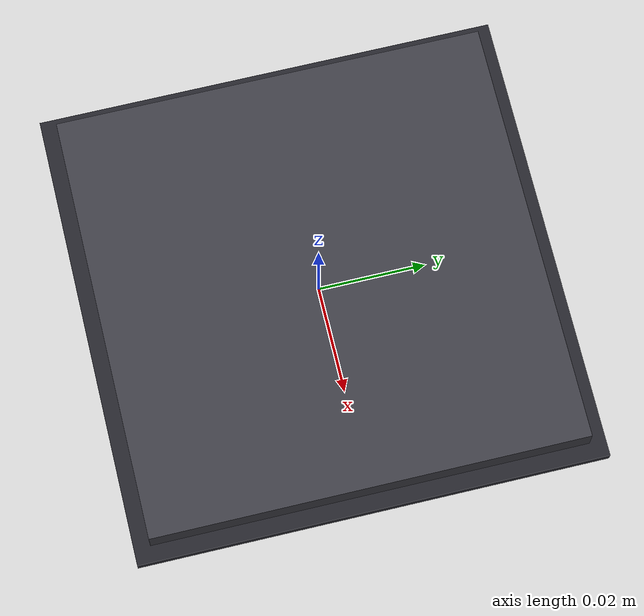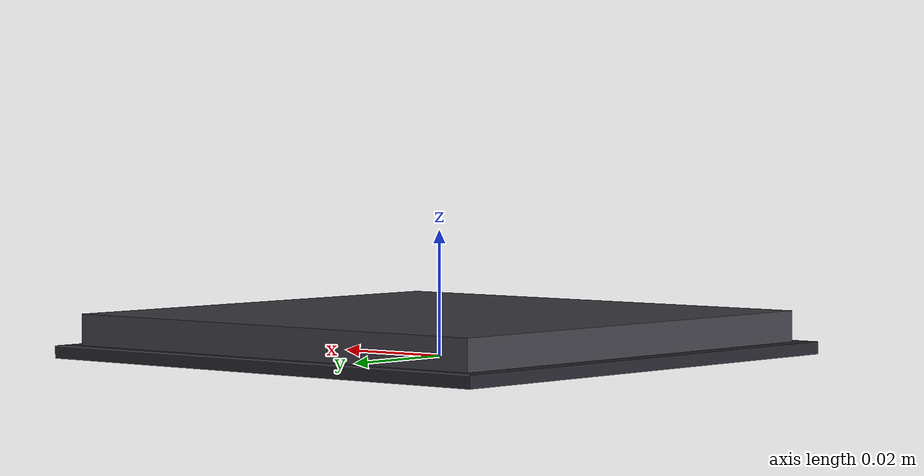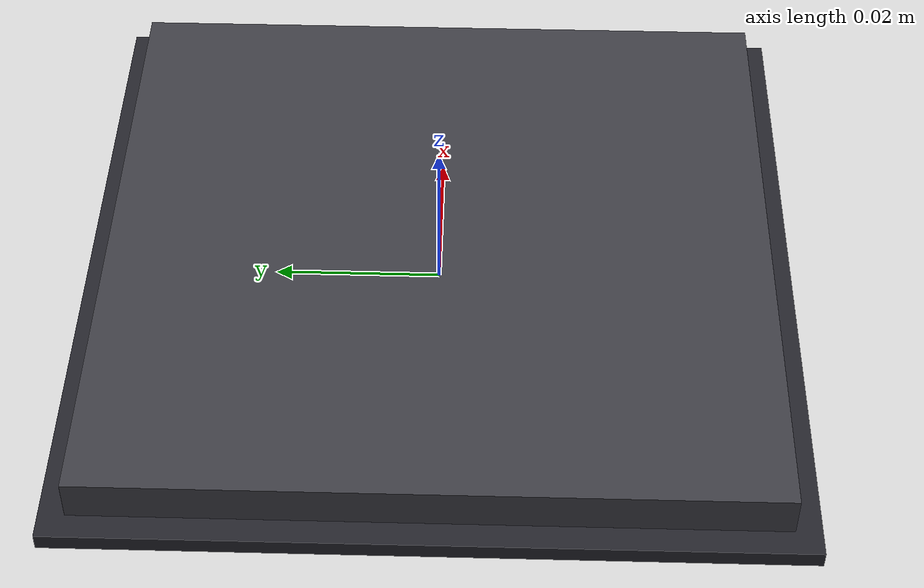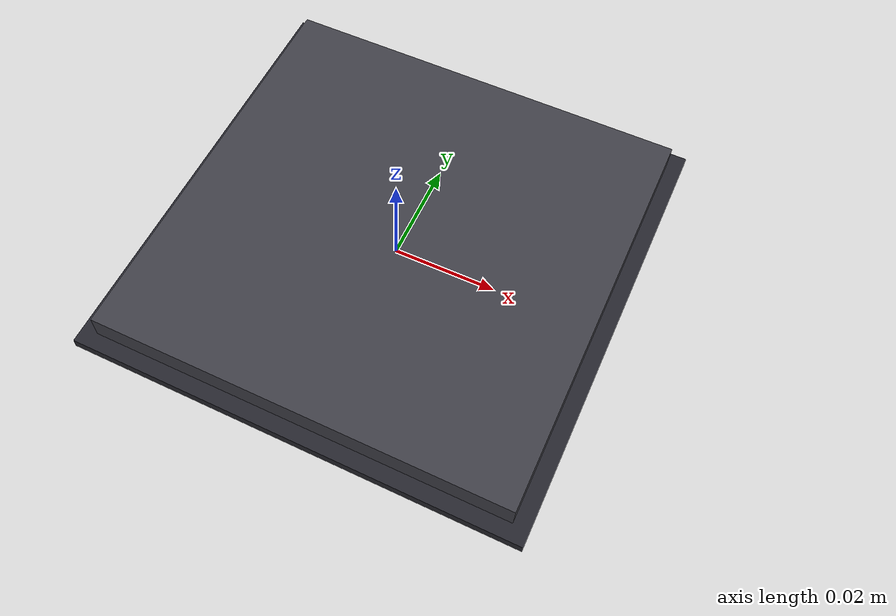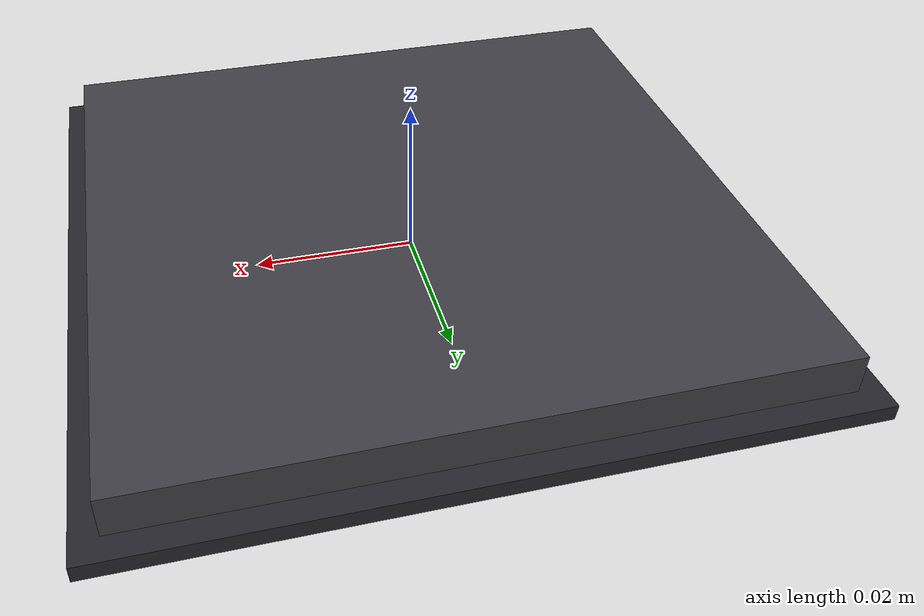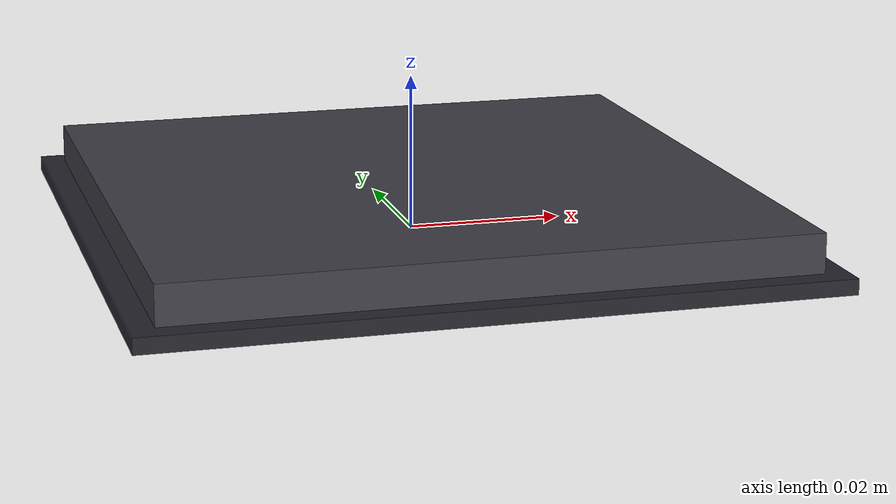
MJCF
<mujoco model="Switch_Quantity2_09">
  <asset>
    <material name="Switch_Quantity2_09_bezel" rgba="0.15 0.15 0.18 1" specular="0.75" shininess="0.85"/>
    <material name="Switch_Quantity2_09_button" rgba="0.25 0.25 0.28 1" specular="0.75" shininess="0.85"/>
  </asset>
  <worldbody>
    <body name="Switch_Quantity2_09">
      <geom name="Switch_Quantity2_09_bezel" type="box"
            pos="0 0 0.001" size="0.043 0.043 0.001"
            material="Switch_Quantity2_09_bezel"/>
      <geom name="Switch_Quantity2_09_button" type="box"
            pos="0 0 0.0035" size="0.04 0.04 0.0035"
            material="Switch_Quantity2_09_button"/>
    </body>
  </worldbody>
</mujoco>
